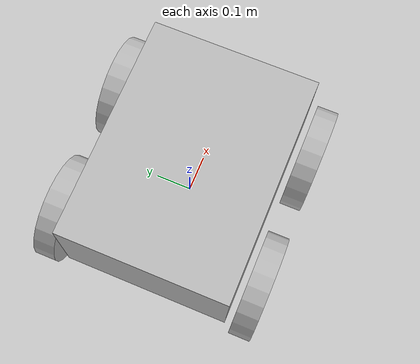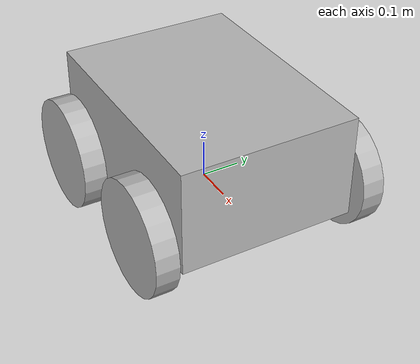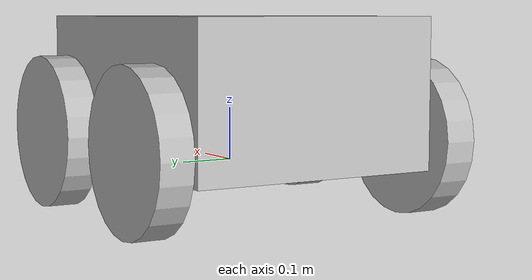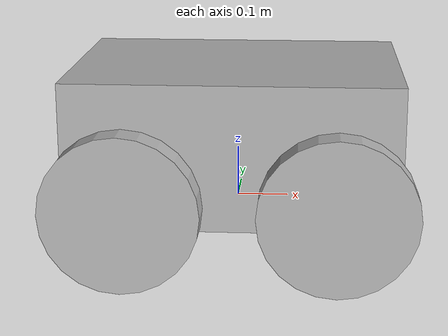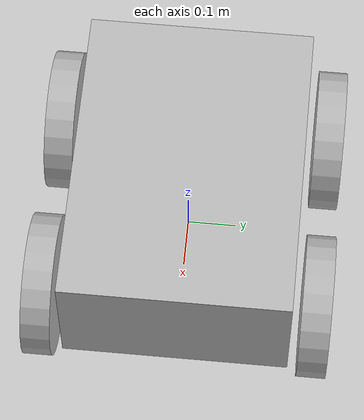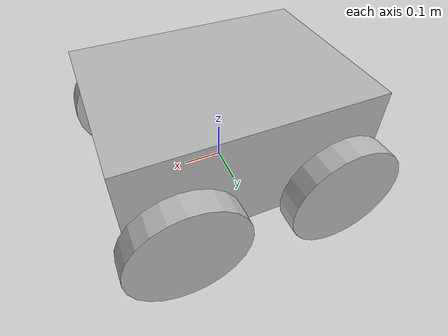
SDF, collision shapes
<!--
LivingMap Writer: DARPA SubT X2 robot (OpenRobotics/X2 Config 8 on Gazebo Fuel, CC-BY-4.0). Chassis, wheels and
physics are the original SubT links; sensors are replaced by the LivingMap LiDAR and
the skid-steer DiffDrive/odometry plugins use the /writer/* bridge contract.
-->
<?xml version="1.0"?>
<sdf version="1.9">
  <model name="writer">
    <!-- Robot geometry scaled x1.5 from the original model (poses, shapes, meshes, wheels); mass kept, inertia x1.5^2. -->
    <link name="base_link">
      <inertial>
        <pose>0.0179985 0.003 0.100494 0 -0 0</pose>
        <mass>16.524</mass>
        <inertia>
          <ixx>0.721361</ixx>
          <ixy>-0.00180005</ixy>
          <ixz>0.0368982</ixz>
          <iyy>0.898211</iyy>
          <iyz>-0.0020253</iyz>
          <izz>1.02488</izz>
        </inertia>
      </inertial>
      <collision name="chassis_collision">
        <pose>0 0 0.138 0 -0 0</pose>
        <geometry>
          <box>
            <size>0.63 0.465 0.276</size>
          </box>
        </geometry>
      </collision>
      <visual name="chassis_visual">
        <pose>0 0 -0.09825 1.5708 0 -1.5708</pose>
        <geometry>
          <mesh>
            <uri>model://writer/meshes/x2_chassis.dae</uri>
            <scale>1.5 1.5 1.5</scale>
          </mesh>
        </geometry>
      </visual>
      <visual name="center_left_headlight_visual">
        <pose>0.33 0.075 0.12675 0 -0 -3.14159</pose>
        <geometry>
          <mesh>
            <uri>model://writer/meshes/headlight.dae</uri>
            <scale>1.5 1.5 1.5</scale>
          </mesh>
        </geometry>
      </visual>
      <visual name="left_headlight_visual">
        <pose>0.33 0.2175 0.12675 0 -0 -3.14159</pose>
        <geometry>
          <mesh>
            <uri>model://writer/meshes/headlight.dae</uri>
            <scale>1.5 1.5 1.5</scale>
          </mesh>
        </geometry>
      </visual>
      <visual name="center_right_headlight_visual">
        <pose>0.33 -0.075 0.12675 0 -0 -3.14159</pose>
        <geometry>
          <mesh>
            <uri>model://writer/meshes/headlight.dae</uri>
            <scale>1.5 1.5 1.5</scale>
          </mesh>
        </geometry>
      </visual>
      <visual name="right_headlight_visual">
        <pose>0.33 -0.2175 0.12675 0 -0 -3.14159</pose>
        <geometry>
          <mesh>
            <uri>model://writer/meshes/headlight.dae</uri>
            <scale>1.5 1.5 1.5</scale>
          </mesh>
        </geometry>
      </visual>
    </link>
    <link name="front_left_wheel">
      <pose>0.1965 0.281693 0.05175 0 -0 0</pose>
      <inertial>
        <mass>0.477</mass>
        <inertia>
          <ixx>0.002925</ixx>
          <ixy>0</ixy>
          <ixz>0</ixz>
          <iyy>0.0054</iyy>
          <iyz>0</iyz>
          <izz>0.002925</izz>
        </inertia>
      </inertial>
      <collision name="collision">
        <pose>0 0 0 1.5708 -0 0</pose>
        <geometry>
          <cylinder>
            <length>0.06</length>
            <radius>0.147</radius>
          </cylinder>
        </geometry>
        <surface>
          <friction>
            <ode>
              <mu>1</mu>
              <mu2>1</mu2>
              <slip1>0.0026</slip1>
              <slip2>0</slip2>
              <fdir1>0 0 1</fdir1>
            </ode>
          </friction>
        </surface>
      </collision>
      <visual name="visual">
        <pose>0 0 0 1.5708 -0 0</pose>
        <geometry>
          <mesh>
            <uri>model://writer/meshes/x2_wheel_left.dae</uri>
            <scale>1.5 1.5 1.5</scale>
          </mesh>
        </geometry>
      </visual>
    </link>
    <link name="front_right_wheel">
      <pose>0.1965 -0.281693 0.05175 0 -0 0</pose>
      <inertial>
        <mass>0.477</mass>
        <inertia>
          <ixx>0.002925</ixx>
          <ixy>0</ixy>
          <ixz>0</ixz>
          <iyy>0.0054</iyy>
          <iyz>0</iyz>
          <izz>0.002925</izz>
        </inertia>
      </inertial>
      <collision name="collision">
        <pose>0 0 0 1.5708 -0 0</pose>
        <geometry>
          <cylinder>
            <length>0.06</length>
            <radius>0.147</radius>
          </cylinder>
        </geometry>
        <surface>
          <friction>
            <ode>
              <mu>1</mu>
              <mu2>1</mu2>
              <slip1>0.0026</slip1>
              <slip2>0</slip2>
              <fdir1>0 0 1</fdir1>
            </ode>
          </friction>
        </surface>
      </collision>
      <visual name="visual">
        <pose>0 0 0 1.5708 -0 0</pose>
        <geometry>
          <mesh>
            <uri>model://writer/meshes/x2_wheel_right.dae</uri>
            <scale>1.5 1.5 1.5</scale>
          </mesh>
        </geometry>
      </visual>
    </link>
    <link name="rear_left_wheel">
      <pose>-0.1965 0.281693 0.05175 0 -0 0</pose>
      <inertial>
        <mass>0.477</mass>
        <inertia>
          <ixx>0.002925</ixx>
          <ixy>0</ixy>
          <ixz>0</ixz>
          <iyy>0.0054</iyy>
          <iyz>0</iyz>
          <izz>0.002925</izz>
        </inertia>
      </inertial>
      <collision name="collision">
        <pose>0 0 0 1.5708 -0 0</pose>
        <geometry>
          <cylinder>
            <length>0.06</length>
            <radius>0.147</radius>
          </cylinder>
        </geometry>
        <surface>
          <friction>
            <ode>
              <mu>1</mu>
              <mu2>1</mu2>
              <slip1>0.0026</slip1>
              <slip2>0</slip2>
              <fdir1>0 0 1</fdir1>
            </ode>
          </friction>
        </surface>
      </collision>
      <visual name="visual">
        <pose>0 0 0 1.5708 -0 0</pose>
        <geometry>
          <mesh>
            <uri>model://writer/meshes/x2_wheel_left.dae</uri>
            <scale>1.5 1.5 1.5</scale>
          </mesh>
        </geometry>
      </visual>
    </link>
    <link name="rear_right_wheel">
      <pose>-0.1965 -0.281693 0.05175 0 -0 0</pose>
      <inertial>
        <mass>0.477</mass>
        <inertia>
          <ixx>0.002925</ixx>
          <ixy>0</ixy>
          <ixz>0</ixz>
          <iyy>0.0054</iyy>
          <iyz>0</iyz>
          <izz>0.002925</izz>
        </inertia>
      </inertial>
      <collision name="collision">
        <pose>0 0 0 1.5708 -0 0</pose>
        <geometry>
          <cylinder>
            <length>0.06</length>
            <radius>0.147</radius>
          </cylinder>
        </geometry>
        <surface>
          <friction>
            <ode>
              <mu>1</mu>
              <mu2>1</mu2>
              <slip1>0.0026</slip1>
              <slip2>0</slip2>
              <fdir1>0 0 1</fdir1>
            </ode>
          </friction>
        </surface>
      </collision>
      <visual name="visual">
        <pose>0 0 0 1.5708 -0 0</pose>
        <geometry>
          <mesh>
            <uri>model://writer/meshes/x2_wheel_right.dae</uri>
            <scale>1.5 1.5 1.5</scale>
          </mesh>
        </geometry>
      </visual>
    </link>
    <joint name="front_left_wheel_joint" type="revolute">
      <child>front_left_wheel</child>
      <parent>base_link</parent>
      <axis>
        <xyz>0 1 0</xyz>
        <limit>
          <lower>-1e+16</lower>
          <upper>1e+16</upper>
        </limit>
        <use_parent_model_frame>1</use_parent_model_frame>
      </axis>
    </joint>
    <joint name="rear_left_wheel_joint" type="revolute">
      <parent>base_link</parent>
      <child>rear_left_wheel</child>
      <axis>
        <xyz>0 1 0</xyz>
        <limit>
          <lower>-1.79769e+308</lower>
          <upper>+1.79769e+308</upper>
        </limit>
      </axis>
    </joint>
    <joint name="rear_right_wheel_joint" type="revolute">
      <parent>base_link</parent>
      <child>rear_right_wheel</child>
      <axis>
        <xyz>0 1 0</xyz>
        <limit>
          <lower>-1.79769e+308</lower>
          <upper>+1.79769e+308</upper>
        </limit>
      </axis>
    </joint>
    <joint name="front_right_wheel_joint" type="revolute">
      <parent>base_link</parent>
      <child>front_right_wheel</child>
      <axis>
        <xyz>0 1 0</xyz>
        <limit>
          <lower>-1.79769e+308</lower>
          <upper>+1.79769e+308</upper>
        </limit>
      </axis>
    </joint>
    <link name="laser">
      <pose>0 0 0.405 0 0 0</pose>
      <inertial>
        <mass>0.1</mass>
        <inertia>
          <ixx>0.000225</ixx>
          <iyy>0.000225</iyy>
          <izz>0.000225</izz>
        </inertia>
      </inertial>
      <sensor name="lidar" type="gpu_lidar">
        <topic>/writer/scan</topic>
        <update_rate>10</update_rate>
        <lidar>
          <scan>
            <horizontal>
              <samples>720</samples>
              <resolution>1</resolution>
              <min_angle>-3.14159</min_angle>
              <max_angle>3.14159</max_angle>
            </horizontal>
          </scan>
          <range>
            <min>.08</min>
            <max>12</max>
            <resolution>.01</resolution>
          </range>
        </lidar>
        <always_on>true</always_on>
        <visualize>true</visualize>
      </sensor>
    </link>
    <joint name="laser_fixed" type="fixed">
      <parent>base_link</parent>
      <child>laser</child>
    </joint>
    <plugin filename="gz-sim-diff-drive-system" name="gz::sim::systems::DiffDrive">
      <left_joint>front_left_wheel_joint</left_joint>
      <left_joint>rear_left_wheel_joint</left_joint>
      <right_joint>front_right_wheel_joint</right_joint>
      <right_joint>rear_right_wheel_joint</right_joint>
      <wheel_separation>0.5634</wheel_separation>
      <wheel_radius>0.147</wheel_radius>
      <max_linear_acceleration>.5</max_linear_acceleration>
      <max_angular_acceleration>1.5</max_angular_acceleration>
      <max_linear_velocity>1.2</max_linear_velocity>
      <max_angular_velocity>2.0</max_angular_velocity>
      <topic>/writer/cmd_vel</topic>
      <odom_topic>/writer/wheel_odom</odom_topic>
      <tf_topic>/writer/tf</tf_topic>
      <frame_id>writer/odom</frame_id>
      <child_frame_id>writer/base_link</child_frame_id>
    </plugin>
    <plugin filename="gz-sim-odometry-publisher-system" name="gz::sim::systems::OdometryPublisher">
      <odom_frame>world</odom_frame>
      <robot_base_frame>writer/base_link</robot_base_frame>
      <dimensions>2</dimensions>
      <odom_publish_frequency>30</odom_publish_frequency>
      <odom_topic>/writer/world_odom</odom_topic>
    </plugin>
  </model>
</sdf>
